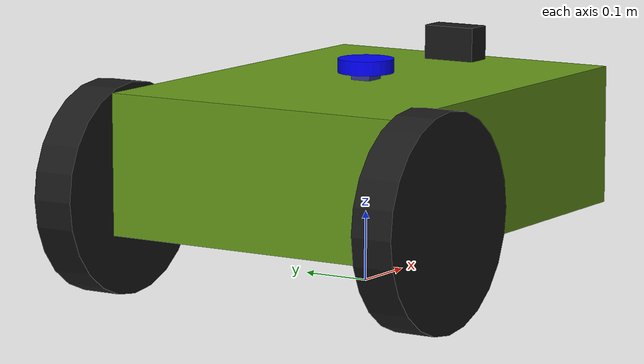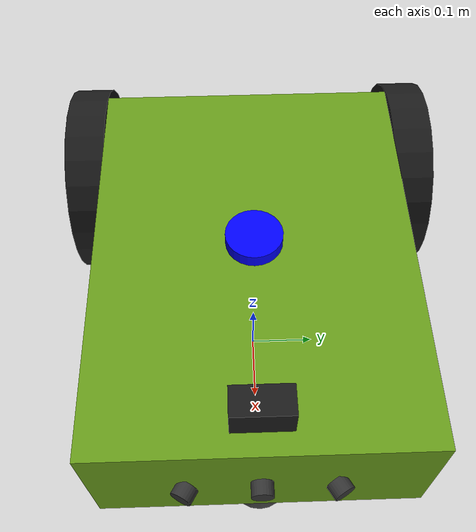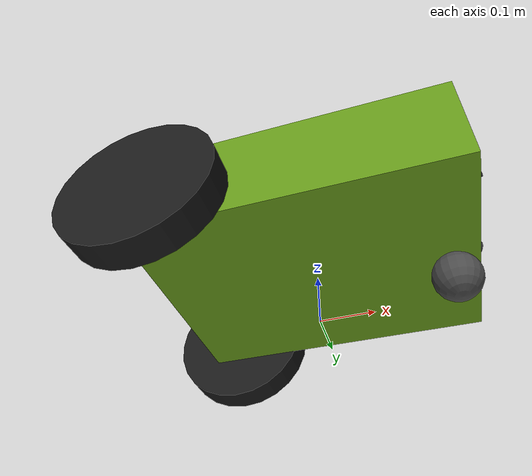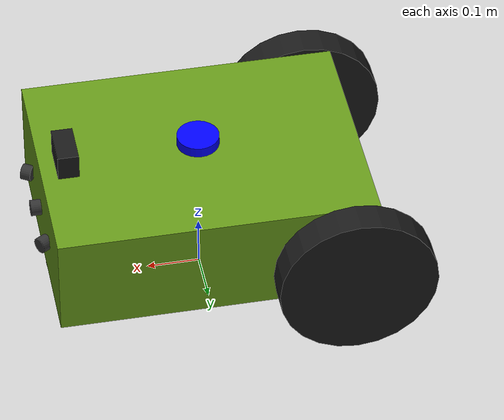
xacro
<?xml version="1.0"?>
<robot name="lawn_mower_robot" xmlns:xacro="http://www.ros.org/wiki/xacro">

  <xacro:include filename="robot_core.xacro"/>
  <xacro:include filename="gazebo_control.xacro"/>
  <xacro:include filename="sensor_camera.xacro"/>
  <xacro:include filename="sensor_gps.xacro"/>
  <xacro:include filename="sensor_imu.xacro"/>
  <xacro:include filename="sensor_sonar_center.xacro"/>
  <xacro:include filename="sensor_sonar_right.xacro"/>
  <xacro:include filename="sensor_sonar_left.xacro"/>

</robot>

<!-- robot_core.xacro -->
<robot xmlns:xacro="http://www.ros.org/wiki/xacro">

  <xacro:include filename="inertial_macros.xacro"/>

  <!-- Robot dimensions and parameters -->
  <xacro:property name="body_length" value="0.6"/>
  <xacro:property name="body_width" value="0.45"/>
  <xacro:property name="body_height" value="0.2"/>
  <xacro:property name="ground_clearance" value="0.09"/>

  <xacro:property name="wheel_radius" value="0.15"/>
  <xacro:property name="wheel_width" value="0.06"/>
  <xacro:property name="wheel_separation" value="0.51"/> <!-- Distance between wheel centers -->

  <xacro:property name="front_wheel_radius" value="0.045"/>
  <xacro:property name="rear_wheel_offset" value="0.05"/> <!-- Distance from rear wall to wheel center -->
  <xacro:property name="front_wheel_offset" value="0.05"/> <!-- Distance from front wall to wheel center -->

  <!-- Base link at center -->
  <link name="base_link">
  </link>

  <!-- Chassis link -->
  <joint name="chassis_joint" type="fixed">
    <parent link="base_link"/>
    <child link="chassis"/>
    <origin xyz="0 0 ${ground_clearance + body_height/2}"/>
  </joint>

  <link name="chassis">
    <visual>
      <origin xyz="0 0 0"/>
      <geometry>
        <box size="${body_length} ${body_width} ${body_height}"/>
      </geometry>
      <material name="chassis_material">
        <color rgba="0.4 0.6 0.1 1.0"/>
      </material>
    </visual>
    <collision>
      <origin xyz="0 0 0"/>
      <geometry>
        <box size="${body_length} ${body_width} ${body_height}"/>
      </geometry>
    </collision>
    <xacro:inertial_box mass="15.0" x="${body_length}" y="${body_width}" z="${body_height}"/>
  </link>

  <!-- Left wheel link -->
  <joint name="left_wheel_joint" type="continuous">
    <parent link="base_link"/>
    <child link="left_wheel"/>
    <origin xyz="-${body_length/2 - rear_wheel_offset} ${wheel_separation/2} ${wheel_radius}" rpy="-${pi/2} 0 0"/>
    <axis xyz="0 0 1"/>
  </joint>

  <link name="left_wheel">
    <visual>
      <geometry>
        <cylinder radius="${wheel_radius}" length="${wheel_width}"/>
      </geometry>
      <material name="wheel_material">
        <color rgba="0.1 0.1 0.1 1.0"/>
      </material>
    </visual>
    <collision>
      <geometry>
        <cylinder radius="${wheel_radius}" length="${wheel_width}"/>
      </geometry>
    </collision>
    <xacro:inertial_cylinder mass="2.0" length="${wheel_width}" radius="${wheel_radius}"/>
  </link>

  <!-- Right wheel link -->
  <joint name="right_wheel_joint" type="continuous">
    <parent link="base_link"/>
    <child link="right_wheel"/>
    <origin xyz="-${body_length/2 - rear_wheel_offset} -${wheel_separation/2} ${wheel_radius}" rpy="${pi/2} 0 0"/>
    <axis xyz="0 0 -1"/>
  </joint>

  <link name="right_wheel">
    <visual>
      <geometry>
        <cylinder radius="${wheel_radius}" length="${wheel_width}"/>
      </geometry>
      <material name="wheel_material">
        <color rgba="0.1 0.1 0.1 1.0"/>
      </material>
    </visual>
    <collision>
      <geometry>
        <cylinder radius="${wheel_radius}" length="${wheel_width}"/>
      </geometry>
    </collision>
    <xacro:inertial_cylinder mass="2.0" length="${wheel_width}" radius="${wheel_radius}"/>
  </link>

  <!-- Front wheel link (caster wheel) -->
  <joint name="front_wheel_joint" type="fixed">
    <parent link="base_link"/>
    <child link="front_wheel"/>
    <origin xyz="${body_length/2 - front_wheel_offset} 0 ${front_wheel_radius}"/>
  </joint>

  <link name="front_wheel">
    <visual>
      <geometry>
        <sphere radius="${front_wheel_radius}"/>
      </geometry>
      <material name="wheel_material">
        <color rgba="0.3 0.3 0.3 1.0"/>
      </material>
    </visual>
    <collision>
      <geometry>
        <sphere radius="${front_wheel_radius}"/>
      </geometry>
    </collision>
    <xacro:inertial_sphere mass="0.5" radius="${front_wheel_radius}"/>
  </link>

  <!-- Gazebo Parameters -->
  <gazebo reference="chassis">
    <mu1>1.0</mu1>
    <mu2>1.0</mu2>
  </gazebo>

  <gazebo reference="right_wheel">
    <mu1>1.0</mu1>
    <mu2>1.0</mu2>
  </gazebo>

  <gazebo reference="left_wheel">
    <mu1>1.0</mu1>
    <mu2>1.0</mu2>
  </gazebo>

  <gazebo reference="front_wheel">
    <mu1>0.1</mu1>
    <mu2>0.1</mu2>
  </gazebo>

</robot>

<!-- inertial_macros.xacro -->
<robot xmlns:xacro="http://www.ros.org/wiki/xacro">

  <!-- Inertial macros -->
  <xacro:macro name="inertial_box" params="mass x y z">
    <inertial>
      <origin xyz="0 0 0" rpy="0 0 0"/>
      <mass value="${mass}"/>
      <inertia ixx="${mass/12.0 * (y*y + z*z)}" ixy="0.0" ixz="0.0"
               iyy="${mass/12.0 * (x*x + z*z)}" iyz="0.0"
               izz="${mass/12.0 * (x*x + y*y)}"/>
    </inertial>
  </xacro:macro>

  <xacro:macro name="inertial_cylinder" params="mass length radius">
    <inertial>
      <origin xyz="0 0 0" rpy="0 0 0"/>
      <mass value="${mass}"/>
      <inertia ixx="${mass/12.0 * (3*radius*radius + length*length)}" ixy="0.0" ixz="0.0"
               iyy="${mass/12.0 * (3*radius*radius + length*length)}" iyz="0.0"
               izz="${mass/2.0 * radius*radius}"/>
    </inertial>
  </xacro:macro>

  <xacro:macro name="inertial_sphere" params="mass radius">
    <inertial>
      <origin xyz="0 0 0" rpy="0 0 0"/>
      <mass value="${mass}"/>
      <inertia ixx="${2*mass*radius*radius/5}" ixy="0.0" ixz="0.0"
               iyy="${2*mass*radius*radius/5}" iyz="0.0"
               izz="${2*mass*radius*radius/5}"/>
    </inertial>
  </xacro:macro>
</robot>

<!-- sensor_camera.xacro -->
<robot xmlns:xacro="http://www.ros.org/wiki/xacro">

  <!-- Camera -->
  <joint name="camera_joint" type="fixed">
    <parent link="chassis"/>
    <child link="camera_frame"/>
    <origin xyz="${body_length/2 - 0.05} 0 ${body_height/2 + 0.02}" rpy="0 0 0"/>
  </joint>

  <link name="camera_frame">
    <visual>
      <geometry>
        <box size="0.04 0.08 0.06"/>
      </geometry>
      <material name="camera_material">
        <color rgba="0.1 0.1 0.1 1.0"/>
      </material>
    </visual>
    <collision>
      <geometry>
        <box size="0.04 0.08 0.06"/>
      </geometry>
    </collision>
    <xacro:inertial_box mass="0.1" x="0.04" y="0.08" z="0.06"/>
  </link>

  <!-- Gazebo: Camera -->
  <gazebo reference="camera_frame">
    <sensor name="camera" type="camera">
      <pose>0 0 0 0 0 0</pose>
      <topic>/camera/image</topic>
      <always_on>true</always_on>
      <visualize>true</visualize>
      <update_rate>10</update_rate>
      <camera>
        <horizontal_fov>1.57</horizontal_fov>
        <image>
          <width>640</width>
          <height>480</height>
          <format>R8G8B8</format>
        </image>
        <clip>
          <near>0.1</near>
          <far>100</far>
        </clip>
        <info_topic>/camera/camera_info</info_topic>
      </camera>
      <frame_id>camera_frame</frame_id>
    </sensor>
  </gazebo>

</robot>

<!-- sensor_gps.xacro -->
<robot xmlns:xacro="http://www.ros.org/wiki/xacro">

  <!-- GPS -->
  <joint name="gps_joint" type="fixed">
    <parent link="chassis"/>
    <child link="gps_frame"/>
    <origin xyz="0 0 ${body_height/2 + 0.02}" rpy="0 0 0"/>
  </joint>

  <link name="gps_frame">
    <visual>
      <geometry>
        <cylinder length="0.02" radius="0.04"/>
      </geometry>
      <material name="gps_material">
        <color rgba="0.0 0.0 1.0 1.0"/>
      </material>
    </visual>
    <collision>
      <geometry>
        <cylinder length="0.02" radius="0.04"/>
      </geometry>
    </collision>
    <xacro:inertial_cylinder mass="0.2" length="0.02" radius="0.04"/>
  </link>

  <!-- Gazebo: GPS -->
  <gazebo reference="gps_frame">
    <sensor name="gps" type="navsat">
      <always_on>true</always_on>
      <update_rate>10</update_rate>
      <topic>/gps/fix</topic>
      <gz_frame_id>gps_frame</gz_frame_id>
      <navsat>
        <position_sensing>
          <horizontal>
            <noise type="gaussian">
              <mean>0.0</mean>
              <stddev>0.5</stddev>
            </noise>
          </horizontal>
          <vertical>
            <noise type="gaussian">
              <mean>0.0</mean>
              <stddev>1.0</stddev>
            </noise>
          </vertical>
        </position_sensing>
        <velocity_sensing>
          <horizontal>
            <noise type="gaussian">
              <mean>0.0</mean>
              <stddev>0.1</stddev>
            </noise>
          </horizontal>
          <vertical>
            <noise type="gaussian">
              <mean>0.0</mean>
              <stddev>0.2</stddev>
            </noise>
          </vertical>
        </velocity_sensing>
      </navsat>
    </sensor>
  </gazebo>

</robot>

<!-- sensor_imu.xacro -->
<robot xmlns:xacro="http://www.ros.org/wiki/xacro">

  <!-- IMU -->
  <joint name="imu_joint" type="fixed">
    <parent link="chassis"/>
    <child link="imu_frame"/>
    <origin xyz="0 0 ${body_height/2}" rpy="0 0 0"/>
  </joint>

  <link name="imu_frame">
    <visual>
      <geometry>
        <box size="0.03 0.03 0.02"/>
      </geometry>
      <material name="imu_material">
        <color rgba="0.2 0.2 0.6 1.0"/>
      </material>
    </visual>
    <collision>
      <geometry>
        <box size="0.03 0.03 0.02"/>
      </geometry>
    </collision>
    <xacro:inertial_box mass="0.05" x="0.03" y="0.03" z="0.02"/>
  </link>

  <!-- Gazebo: IMU -->
  <gazebo reference="imu_frame">
    <sensor name="imu" type="imu">
      <always_on>true</always_on>
      <update_rate>50</update_rate>
      <topic>/imu/data</topic>
      <imu>
        <noise type="gaussian">
          <rate>
            <mean>0.0</mean>
            <stddev>0.02</stddev>
          </rate>
          <accel>
            <mean>0.0</mean>
            <stddev>0.1</stddev>
          </accel>
        </noise>
      </imu>
    </sensor>
  </gazebo>

</robot>

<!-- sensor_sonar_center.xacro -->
<robot xmlns:xacro="http://www.ros.org/wiki/xacro">

  <!-- Sonar Center -->
  <joint name="sonar_center_joint" type="fixed">
    <parent link="chassis"/>
    <child link="sonar_center_frame"/>
    <origin xyz="${body_length/2 + 0.01} 0 0.0" rpy="0 0 0"/>
  </joint>

  <link name="sonar_center_frame">
    <visual>
      <origin xyz="0 0 0" rpy="0 ${pi/2} 0"/>
      <geometry>
        <cylinder length="0.02" radius="0.015"/>
      </geometry>
      <material name="sonar_material">
        <color rgba="0.2 0.2 0.2 1.0"/>
      </material>
    </visual>
    <collision>
      <origin xyz="0 0 0" rpy="0 ${pi/2} 0"/>
      <geometry>
        <cylinder length="0.02" radius="0.015"/>
      </geometry>
    </collision>
    <xacro:inertial_cylinder mass="0.05" length="0.02" radius="0.015"/>
  </link>

  <!-- Gazebo: Sonar Center -->
  <gazebo reference="sonar_center_frame">
    <sensor name="sonar_center" type="gpu_lidar">
      <always_on>true</always_on>
      <visualize>true</visualize>
      <update_rate>10</update_rate>
      <topic>/sonar/center/scan</topic>
      <gz_frame_id>sonar_center_frame</gz_frame_id>
      <lidar>
        <scan>
          <horizontal>
            <samples>1</samples>
            <resolution>1</resolution>
            <min_angle>0</min_angle>
            <max_angle>0</max_angle>
          </horizontal>
          <vertical>
            <samples>1</samples>
            <resolution>1</resolution>
            <min_angle>0</min_angle>
            <max_angle>0</max_angle>
          </vertical>
        </scan>
        <range>
          <min>0.02</min>
          <max>3.0</max>
          <resolution>0.01</resolution>
        </range>
        <noise>
          <type>gaussian</type>
          <mean>0.0</mean>
          <stddev>0.01</stddev>
        </noise>
      </lidar>
    </sensor>
  </gazebo>

</robot>

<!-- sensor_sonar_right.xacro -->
<robot xmlns:xacro="http://www.ros.org/wiki/xacro">

  <!-- Sonar Right -->
  <joint name="sonar_right_joint" type="fixed">
    <parent link="chassis"/>
    <child link="sonar_right_frame"/>
    <origin xyz="${body_length/2 + 0.01} -0.10 0.0" rpy="0 0 -${pi/6}"/>
  </joint>

  <link name="sonar_right_frame">
    <visual>
      <origin xyz="0 0 0" rpy="0 ${pi/2} 0"/>
      <geometry>
        <cylinder length="0.02" radius="0.015"/>
      </geometry>
      <material name="sonar_material">
        <color rgba="0.2 0.2 0.2 1.0"/>
      </material>
    </visual>
    <collision>
      <origin xyz="0 0 0" rpy="0 ${pi/2} 0"/>
      <geometry>
        <cylinder length="0.02" radius="0.015"/>
      </geometry>
    </collision>
    <xacro:inertial_cylinder mass="0.05" length="0.02" radius="0.015"/>
  </link>

  <!-- Gazebo: Sonar Right -->
  <gazebo reference="sonar_right_frame">
    <sensor name="sonar_right" type="gpu_lidar">
      <always_on>true</always_on>
      <visualize>true</visualize>
      <update_rate>10</update_rate>
      <topic>/sonar/right/scan</topic>
      <gz_frame_id>sonar_right_frame</gz_frame_id>
      <lidar>
        <scan>
          <horizontal>
            <samples>1</samples>
            <resolution>1</resolution>
            <min_angle>0</min_angle>
            <max_angle>0</max_angle>
          </horizontal>
          <vertical>
            <samples>1</samples>
            <resolution>1</resolution>
            <min_angle>0</min_angle>
            <max_angle>0</max_angle>
          </vertical>
        </scan>
        <range>
          <min>0.02</min>
          <max>3.0</max>
          <resolution>0.01</resolution>
        </range>
        <noise>
          <type>gaussian</type>
          <mean>0.0</mean>
          <stddev>0.01</stddev>
        </noise>
      </lidar>
    </sensor>
  </gazebo>

</robot>

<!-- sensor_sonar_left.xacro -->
<robot xmlns:xacro="http://www.ros.org/wiki/xacro">

  <!-- Sonar Left -->
  <joint name="sonar_left_joint" type="fixed">
    <parent link="chassis"/>
    <child link="sonar_left_frame"/>
    <origin xyz="${body_length/2 + 0.01} 0.10 0.0" rpy="0 0 ${pi/6}"/>
  </joint>

  <link name="sonar_left_frame">
    <visual>
      <origin xyz="0 0 0" rpy="0 ${pi/2} 0"/>
      <geometry>
        <cylinder length="0.02" radius="0.015"/>
      </geometry>
      <material name="sonar_material">
        <color rgba="0.2 0.2 0.2 1.0"/>
      </material>
    </visual>
    <collision>
      <origin xyz="0 0 0" rpy="0 ${pi/2} 0"/>
      <geometry>
        <cylinder length="0.02" radius="0.015"/>
      </geometry>
    </collision>
    <xacro:inertial_cylinder mass="0.05" length="0.02" radius="0.015"/>
  </link>

  <!-- Gazebo: Sonar Left -->
  <gazebo reference="sonar_left_frame">
    <sensor name="sonar_left" type="gpu_lidar">
      <always_on>true</always_on>
      <visualize>true</visualize>
      <update_rate>10</update_rate>
      <topic>/sonar/left/scan</topic>
      <gz_frame_id>sonar_left_frame</gz_frame_id>
      <lidar>
        <scan>
          <horizontal>
            <samples>1</samples>
            <resolution>1</resolution>
            <min_angle>0</min_angle>
            <max_angle>0</max_angle>
          </horizontal>
          <vertical>
            <samples>1</samples>
            <resolution>1</resolution>
            <min_angle>0</min_angle>
            <max_angle>0</max_angle>
          </vertical>
        </scan>
        <range>
          <min>0.02</min>
          <max>3.0</max>
          <resolution>0.01</resolution>
        </range>
        <noise>
          <type>gaussian</type>
          <mean>0.0</mean>
          <stddev>0.01</stddev>
        </noise>
      </lidar>
    </sensor>
  </gazebo>

</robot>
